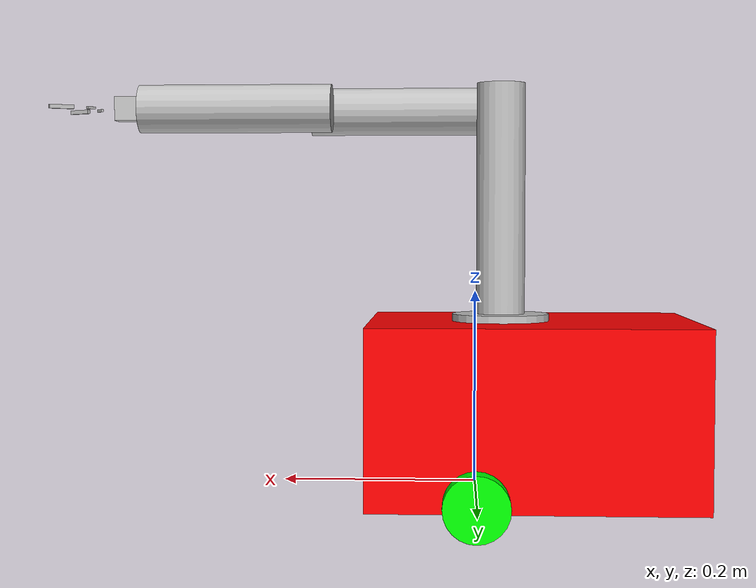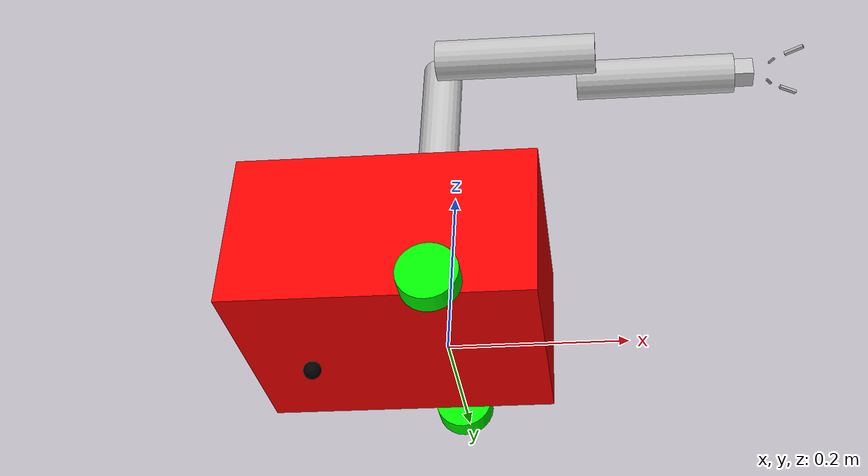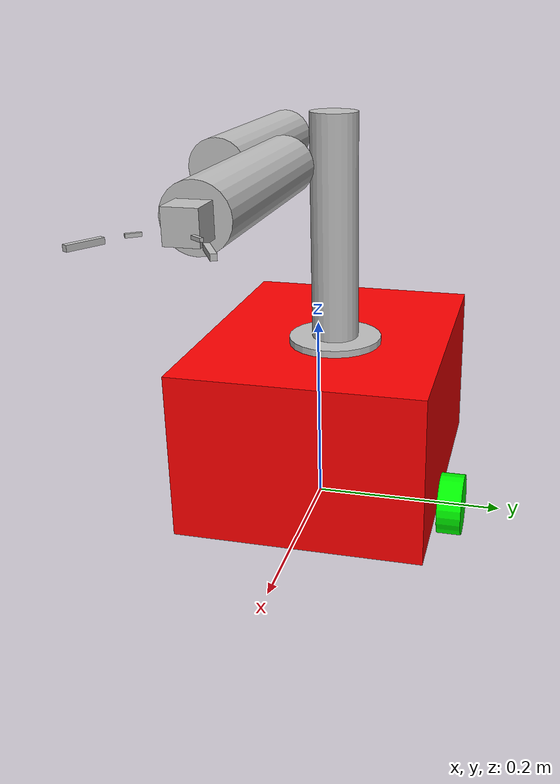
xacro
<?xml version="1.0"?>
<robot xmlns:xacro="http://www.ros.org/wiki/xacro" >

    <xacro:include filename="inertial_macro.xacro"/>

    <xacro:property name="chassis_length" value="0.335"/>
    <xacro:property name="chassis_width" value="0.265"/>
    <xacro:property name="chassis_height" value="0.18"/>
    <xacro:property name="chassis_mass" value="5.0"/>
    <xacro:property name="wheel_radius" value="0.033"/>
    <xacro:property name="wheel_thickness" value="0.026"/>
    <xacro:property name="wheel_mass" value="0.05"/>
    <xacro:property name="wheel_offset_x" value="0.226"/>
    <xacro:property name="wheel_offset_y" value="0.1485"/>
    <xacro:property name="wheel_offset_z" value="0.01"/>
    <xacro:property name="caster_wheel_radius" value="0.01"/>
    <xacro:property name="caster_wheel_mass" value="0.01"/>
    <xacro:property name="caster_wheel_offset_x" value="0.075"/>
    <xacro:property name="caster_wheel_offset_z" value="${wheel_offset_z - wheel_radius + caster_wheel_radius}"/>

    <material name="white">
        <color rgba="1 1 1 1" />
    </material>

    <material name="orange">
        <color rgba="1 0.3 0.1 1"/>
    </material>

    <material name="blue">
        <color rgba="0.2 0.2 1 1"/>
    </material>

    <material name="black">
        <color rgba="0 0 0 1"/>
    </material>

    <material name="red">
        <color rgba="1 0 0 1"/>
    </material>

    <material name="green">
        <color rgba="0 1 0 1"/>
    </material>

    <!-- BASE LINK -->

    <link name="base_link">
        <inertial>
            <mass value="0.01"/>
            <origin xyz="0 0 0"/>
            <inertia ixx="0.0001" ixy="0" ixz="0"
                     iyy="0.0001" iyz="0"
                     izz="0.0001"/>
        </inertial>
    </link>

    <!-- BASE_FOOTPRINT LINK -->

    <joint name="base_footprint_joint" type="fixed">
        <parent link="base_link"/>
        <child link="base_footprint"/>
        <origin xyz="0 0 0" rpy="0 0 0"/>
    </joint>

    <link name="base_footprint">
    </link>

    <!-- CHASSIS LINK -->

    <joint name="chassis_joint" type="fixed">
        <parent link="base_link"/>
        <child link="chassis"/>
        <origin xyz="${-wheel_offset_x} 0 ${-wheel_offset_z}"/>
    </joint>

    <link name="chassis">
        <visual>
            <origin xyz="${chassis_length/2} 0 ${chassis_height/2}"/>
            <geometry>
                <box size="${chassis_length} ${chassis_width} ${chassis_height}"/>
            </geometry>
            <material name="red"/>
        </visual>
        <collision>
            <origin xyz="${chassis_length/2} 0 ${chassis_height/2}"/>
            <geometry>
                <box size="${chassis_length} ${chassis_width} ${chassis_height}"/>
            </geometry>
        </collision>
        <xacro:inertial_box mass="0.5" x="${chassis_length}" y="${chassis_width}" z="${chassis_height}">
            <origin xyz="${chassis_length/2} 0 ${chassis_height/2}" rpy="0 0 0"/>
        </xacro:inertial_box>
    </link>

    <gazebo reference="chassis">
        <material>Gazebo/Red</material>
    </gazebo>

    <!-- LEFT WHEEL LINK -->

    <joint name="left_wheel_joint" type="continuous">
        <parent link="base_link"/>
        <child link="left_wheel"/>
        <origin xyz="0 ${wheel_offset_y} 0" rpy="-${pi/2} 0 0" />
        <axis xyz="0 0 1"/>
    </joint>

    <link name="left_wheel">
        <visual>
            <geometry>
                <cylinder radius="${wheel_radius}" length="${wheel_thickness}"/>
            </geometry>
            <material name="green"/>
        </visual>
        <collision>
            <geometry>
                <cylinder radius="${wheel_radius}" length="${wheel_thickness}"/>
            </geometry>
        </collision>
        <xacro:inertial_cylinder mass="${wheel_mass}" length="${wheel_thickness}" radius="${wheel_radius}">
            <origin xyz="0 0 0" rpy="0 0 0"/>
        </xacro:inertial_cylinder>
    </link>

    <gazebo reference="left_wheel">
        <material>Gazebo/Green</material>
        <mu1 value="0.7"/>
        <mu2 value="0.7"/>
    </gazebo>

    <!-- RIGHT WHEEL LINK -->

    <joint name="right_wheel_joint" type="continuous">
        <parent link="base_link"/>
        <child link="right_wheel"/>
        <origin xyz="0 ${-wheel_offset_y} 0" rpy="${pi/2} 0 0" />
        <axis xyz="0 0 -1"/>
    </joint>

    <link name="right_wheel">
        <visual>
            <geometry>
                <cylinder radius="${wheel_radius}" length="${wheel_thickness}"/>
            </geometry>
            <material name="green"/>
        </visual>
        <collision>
            <geometry>
                <cylinder radius="${wheel_radius}" length="${wheel_thickness}"/>
            </geometry>
        </collision>
        <xacro:inertial_cylinder mass="${wheel_mass}" length="${wheel_thickness}" radius="${wheel_radius}">
            <origin xyz="0 0 0" rpy="0 0 0"/>
        </xacro:inertial_cylinder>
    </link>

    <gazebo reference="right_wheel">
        <material>Gazebo/Green</material>
        <mu1 value="0.7"/>
        <mu2 value="0.7"/>
    </gazebo>

    <!-- CASTER WHEEL LINK -->

    <joint name="caster_wheel_joint" type="fixed">
        <parent link="chassis"/>
        <child link="caster_wheel"/>
        <origin xyz="${caster_wheel_offset_x} 0 ${caster_wheel_offset_z}"/>
    </joint>

    <link name="caster_wheel">
        <visual>
            <geometry>
                <sphere radius="${caster_wheel_radius}"/>
            </geometry>
            <material name="black"/>
        </visual>
        <collision>
            <geometry>
                <sphere radius="${caster_wheel_radius}"/>
            </geometry>
        </collision>
        <xacro:inertial_sphere mass="${caster_wheel_mass}" radius="${caster_wheel_radius}">
            <origin xyz="0 0 0" rpy="0 0 0"/>
        </xacro:inertial_sphere>
    </link>

    <gazebo reference="caster_wheel">
        <material>Gazebo/Black</material>
        <mu1 value="0.1"/>
        <mu2 value="0.1"/>
    </gazebo>

	<link name="arm_base_link">
		<inertial>
			<mass value="0.1"/>
			<origin rpy="0 0 0" xyz="0 0 0.025"/>
			<inertia ixx="0.0027" iyy="0.0027" izz="0.005" ixy="0" ixz="0" iyz="0"/>
		</inertial>
		<visual>
			<geometry>
				<cylinder length="0.025" radius="0.05"/>
			</geometry>
			<material name="silver">
				<color rgba="0.75 0.75 0.75 1"/>
			</material>
			<origin rpy="0 0 0" xyz="0 0 0.025"/>
		</visual>
		<collision>
			<geometry>
				<cylinder length="0.025" radius="0.05"/>
			</geometry>
			<origin rpy="0 0 0" xyz="0 0 0.025"/>
		</collision>
	</link>
	<joint name="mount_arm" type="fixed">
      <parent link="chassis"/>
      <child link="arm_base_link"/>
      <origin xyz="0.20 0.012 0.15" rpy="0 0 0"/>
    </joint>
	<link name="torso">
		<inertial>
			<mass value="0.1"/>
			<origin rpy="0 0 0" xyz="0 0 0.125"/>
			<inertia ixx="0.02146" iyy="0.02146" izz="0.00125" ixy="0" ixz="0" iyz="0"/>
		</inertial>
		<visual>
			<geometry>
				<cylinder length="0.25" radius="0.025"/>
			</geometry>
			<material name="silver">
				<color rgba="0.75 0.75 0.75 1"/>
			</material>
			<origin rpy="0 0 0" xyz="0.0 0.0 0.125"/>
		</visual>
		<collision>
			<geometry>
				<cylinder length="0.25" radius="0.025"/>
			</geometry>
			<origin rpy="0 0 0" xyz="0.0 0.0 0.125"/>
		</collision>
	</link>
	<joint name="hip" type="revolute">
		<axis xyz="0 0 1"/>
		<limit lower="-3.14" upper="3.14" effort="20" velocity="1"/>
		<parent link="arm_base_link"/>
		<child link="torso"/>
		<origin rpy="0 0 0" xyz="0 0 0.025"/>
	</joint>
	<link name="upper_arm">
		<inertial>
			<mass value="0.1"/>
			<origin rpy="0 0 0" xyz="0 0 0.1"/>
			<inertia ixx="0.01396" iyy="0.01396" izz="0.00125" ixy="0" ixz="0" iyz="0"/>
		</inertial>
		<visual>
			<geometry>
				<cylinder length="0.2" radius="0.025"/>
			</geometry>
			<material name="silver"/>
			<origin rpy="0 0 0" xyz="0 0 0.1"/>
		</visual>
		<collision>
			<geometry>
				<cylinder length="0.2" radius="0.025"/>
			</geometry>
			<origin rpy="0 0 0" xyz="0 0 0.1"/>
		</collision>
	</link>
	<joint name="shoulder" type="revolute">
		<axis xyz="0 1 0"/>
		<limit velocity="1.0" effort="30.0" upper="0.6981" lower="-1.5708"/>
		<parent link="torso"/>
		<child link="upper_arm"/>
		<origin rpy="0 1.5708 0" xyz="0.0 -0.05 0.225"/>
	</joint>
	<link name="lower_arm">
		<inertial>
			<mass value="0.1"/>
			<origin rpy="0 0 0" xyz="0 0 0.1"/>
			<inertia ixx="0.01396" iyy="0.01396" izz="0.00125" ixy="0" ixz="0" iyz="0"/>
		</inertial>
		<visual>
			<geometry>
				<cylinder length="0.2" radius="0.025"/>
			</geometry>
			<material name="silver"/>
			<origin rpy="0 0 0" xyz="0 0 0.1"/>
		</visual>
		<collision>
			<geometry>
				<cylinder length="0.2" radius="0.025"/>
			</geometry>
			<origin rpy="0 0 0" xyz="0 0 0.1"/>
		</collision>
	</link>
	<joint name="elbow" type="revolute">
		<axis xyz="0 1 0"/>
		<limit velocity="1.0" effort="30.0" upper="1.5708" lower="-1.5708"/>
		<parent link="upper_arm"/>
		<child link="lower_arm"/>
		<origin rpy="0 0 0" xyz="0.0 0.05 0.175"/>
	</joint>
	<link name="hand">
		<inertial>
			<mass value="0.1"/>
			<inertia ixx="0.00042" iyy="0.00042" izz="0.00042" ixy="0" ixz="0" iyz="0"/>
		</inertial>
		<visual>
			<geometry>
				<box size="0.025 0.025 0.025"/>
			</geometry>
			<material name="silver"/>
		</visual>
		<collision>
			<geometry>
				<box size="0.025 0.025 0.025"/>
			</geometry>
		</collision>
	</link>
	<joint name="wrist" type="revolute">
		<axis xyz="0 1 0"/>
		<limit lower="-1.57" upper="1.57" effort="20" velocity="1"/>
		<parent link="lower_arm"/>
		<child link="hand"/>
		<origin rpy="0 0 0" xyz="0.0 0.0 0.2125"/>
	</joint>
	<link name="left_gripper_base">
		<inertial>
			<mass value="0.01"/>
			<inertia ixx="8.23e-8" iyy="8.23e-8" izz="3.47e-7" ixy="0" ixz="0" iyz="0"/>
		</inertial>
		<visual>
			<geometry>
				<box size="0.0025 0.0025 0.01"/>
			</geometry>
			<material name="silver"/>
		</visual>
		<collision>
			<geometry>
				<box size="0.0025 0.0025 0.01"/>
			</geometry>
		</collision>
	</link>
	<joint name="l_g_base" type="revolute">
		<axis xyz="1 0 0"/>
		<limit velocity="1.0" effort="30.0" lower="0" upper="0.5236"/>
		<origin rpy="-0.9162 0 0" xyz="0 0.02 0.035"/>
		<parent link="hand"/>
		<child link="left_gripper_base"/>
	</joint>
	<link name="right_gripper_base">
		<inertial>
			<mass value="0.01"/>
			<inertia ixx="8.23e-8" iyy="8.23e-8" izz="3.47e-7" ixy="0" ixz="0" iyz="0"/>
		</inertial>
		<visual>
			<geometry>
				<box size="0.0025 0.0025 0.01"/>
			</geometry>
			<material name="silver"/>
		</visual>
		<collision>
			<geometry>
				<box size="0.0025 0.0025 0.01"/>
			</geometry>
		</collision>
	</link>
	<joint name="r_g_base" type="revolute">
		<axis xyz="1 0 0"/>
		<limit velocity="1.0" effort="100.0" upper="0" lower="-0.5236"/>
		<origin rpy="0.9162 0 0" xyz="0 -0.02 0.035"/>
		<parent link="hand"/>
		<child link="right_gripper_base"/>
	</joint>
	<link name="left_gripper_finger">
		<inertial>
			<mass value="0.01"/>
			<inertia ixx="1.57e-7" iyy="1.57e-7" izz="6.8e-7" ixy="0" ixz="0" iyz="0"/>
		</inertial>
		<visual>
			<geometry>
				<box size="0.004 0.004 0.025"/>
			</geometry>
			<material name="silver"/>
		</visual>
		<collision>
			<geometry>
				<box size="0.004 0.004 0.025"/>
			</geometry>
		</collision>
	</link>
	<joint name="l_g_finger" type="fixed">
		<origin rpy="0.3926 0 0" xyz="0 -0.01 0.03"/>
		<parent link="left_gripper_base"/>
		<child link="left_gripper_finger"/>
	</joint>
	<link name="right_gripper_finger">
		<inertial>
			<mass value="0.01"/>
			<inertia ixx="1.57e-7" iyy="1.57e-7" izz="6.8e-7" ixy="0" ixz="0" iyz="0"/>
		</inertial>
		<visual>
			<geometry>
				<box size="0.004 0.004 0.025"/>
			</geometry>
			<material name="silver"/>
		</visual>
		<collision>
			<geometry>
				<box size="0.0025 0.0025 0.025"/>
			</geometry>
		</collision>
	</link>
	<joint name="r_g_finger" type="fixed">
		<origin rpy="-0.3926 0 0" xyz="0 0.01 0.03"/>
		<parent link="right_gripper_base"/>
		<child link="right_gripper_finger"/>
	</joint>

	<transmission name="tran0">
		<type>transmission_interface/SimpleTransmission</type>
		<joint name="hip">
			<hardwareInterface>hardware_interface/PositionJointInterface</hardwareInterface>
		</joint>
		<actuator name="motor0">
			<hardwareInterface>hardware_interface/PositionJointInterface</hardwareInterface>
			<mechanicalReduction>1</mechanicalReduction>
		</actuator>
	</transmission>
	<transmission name="tran1">
		<type>transmission_interface/SimpleTransmission</type>
		<joint name="shoulder">
			<hardwareInterface>hardware_interface/PositionJointInterface</hardwareInterface>
		</joint>
		<actuator name="motor1">
			<hardwareInterface>hardware_interface/PositionJointInterface</hardwareInterface>
			<mechanicalReduction>1</mechanicalReduction>
		</actuator>
	</transmission>
	<transmission name="tran2">
		<type>transmission_interface/SimpleTransmission</type>
		<joint name="elbow">
			<hardwareInterface>hardware_interface/PositionJointInterface</hardwareInterface>
		</joint>
		<actuator name="motor2">
			<hardwareInterface>hardware_interface/PositionJointInterface</hardwareInterface>
			<mechanicalReduction>1</mechanicalReduction>
		</actuator>
	</transmission>
	<transmission name="tran3">
		<type>transmission_interface/SimpleTransmission</type>
		<joint name="wrist">
			<hardwareInterface>hardware_interface/PositionJointInterface</hardwareInterface>
		</joint>
		<actuator name="motor3">
			<hardwareInterface>hardware_interface/PositionJointInterface</hardwareInterface>
			<mechanicalReduction>1</mechanicalReduction>
		</actuator>
	</transmission>
	<transmission name="tran4">
		<type>transmission_interface/SimpleTransmission</type>
		<joint name="l_g_base">
			<hardwareInterface>hardware_interface/PositionJointInterface</hardwareInterface>
		</joint>
		<actuator name="motor4">
			<hardwareInterface>hardware_interface/PositionJointInterface</hardwareInterface>
			<mechanicalReduction>1</mechanicalReduction>
		</actuator>
	</transmission>
	<transmission name="tran5">
		<type>transmission_interface/SimpleTransmission</type>
		<joint name="r_g_base">
			<hardwareInterface>hardware_interface/PositionJointInterface</hardwareInterface>
		</joint>
		<actuator name="motor5">
			<hardwareInterface>hardware_interface/PositionJointInterface</hardwareInterface>
			<mechanicalReduction>1</mechanicalReduction>
		</actuator>
	</transmission>

	<gazebo>
		<plugin name="control" filename="libgazebo_ros_control.so"/>
	</gazebo>
	<gazebo>
		<plugin name="joint_state_publisher" filename="libgazebo_ros_joint_state_publisher.so">
			<jointName>hip, shoulder, elbow, wrist</jointName>
		</plugin>
	</gazebo>

</robot>
